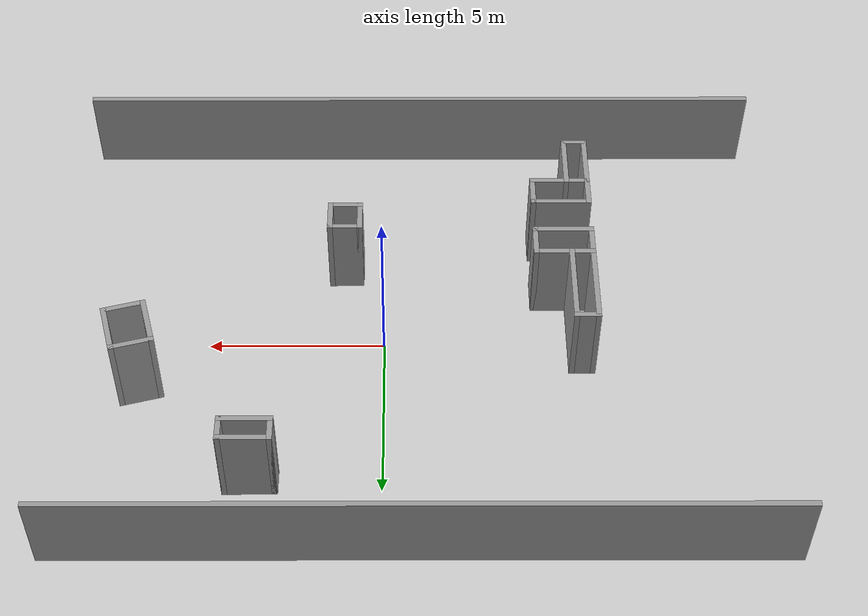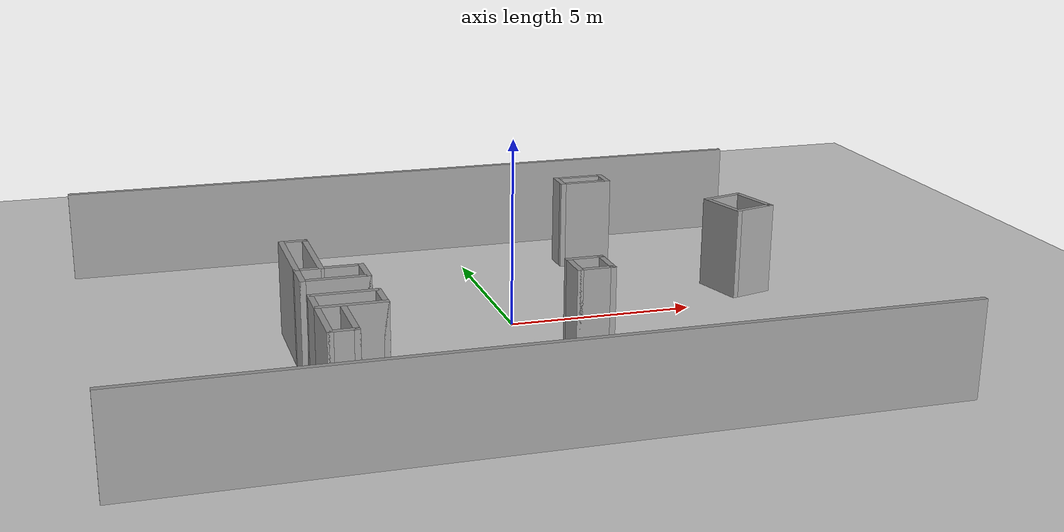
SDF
<sdf version="1.6">
 <world name="default">
  <light name="sun" type="directional">
   <pose>0 0 10 0 -0 0</pose>
   <diffuse>0.8 0.8 0.8 1</diffuse>
   <specular>0.2 0.2 0.2 1</specular>
   <attenuation>
    <range>1000</range>
    <constant>0.9</constant>
    <linear>0.01</linear>
    <quadratic>0.001</quadratic>
   </attenuation>
   <direction>-0.5 0.1 -0.9</direction>
  </light>
  <model name="ground_plane">
   <static>1</static>
   <link name="link">
    <collision name="collision">
     <geometry><plane><normal>0 0 1</normal><size>100 100</size></plane></geometry>
     <surface><friction><ode><mu>100</mu><mu2>50</mu2></ode></friction></surface>
    </collision>
    <visual name="visual">
     <cast_shadows>0</cast_shadows>
     <geometry><plane><normal>0 0 1</normal><size>100 100</size></plane></geometry>
     <material>
      <script><uri>file://media/materials/scripts/gazebo.material</uri><name>Gazebo/Grey</name></script>
     </material>
    </visual>
   </link>
  </model>
  <gravity>0 0 -9.8</gravity>
  <magnetic_field>6e-06 2.3e-05 -4.2e-05</magnetic_field>
  <atmosphere type="adiabatic"/>
  <physics name="default_physics" default="0" type="ode">
   <max_step_size>0.001</max_step_size>
   <real_time_factor>1</real_time_factor>
   <real_time_update_rate>1000</real_time_update_rate>
  </physics>
  <scene><ambient>0.4 0.4 0.4 1</ambient><background>0.7 0.7 0.7 1</background><shadows>1</shadows></scene>
  <audio><device>default</device></audio>
  <spherical_coordinates>
   <surface_model>EARTH_WGS84</surface_model>
   <latitude_deg>0</latitude_deg>
   <longitude_deg>0</longitude_deg>
   <elevation>0</elevation>
   <heading_deg>0</heading_deg>
  </spherical_coordinates>
  <model name="new_world_23.10.25">
   <pose>-1.01664 -0.322448 0 0 -0 0</pose>
   <link name="Wall_10">
    <collision name="Wall_10_Collision">
     <geometry><box><size>1.75 0.15 2.5</size></box></geometry>
     <pose>0 0 1.25 0 -0 0</pose>
    </collision>
    <visual name="Wall_10_Visual">
     <pose>0 0 1.25 0 -0 0</pose>
     <geometry><box><size>1.75 0.15 2.5</size></box></geometry>
     <material>
      <script><uri>file://media/materials/scripts/gazebo.material</uri><name>Gazebo/Grey</name></script>
      <ambient>1 1 1 1</ambient>
     </material>
     <meta><layer>0</layer></meta>
    </visual>
    <pose>-4.08917 -1.96188 0 0 -0 0</pose>
   </link>
   <link name="Wall_11">
    <collision name="Wall_11_Collision">
     <geometry><box><size>1 0.15 2.5</size></box></geometry>
     <pose>0 0 1.25 0 -0 0</pose>
    </collision>
    <visual name="Wall_11_Visual">
     <pose>0 0 1.25 0 -0 0</pose>
     <geometry><box><size>1 0.15 2.5</size></box></geometry>
     <material>
      <script><uri>file://media/materials/scripts/gazebo.material</uri><name>Gazebo/Grey</name></script>
      <ambient>1 1 1 1</ambient>
     </material>
     <meta><layer>0</layer></meta>
    </visual>
    <pose>-3.28917 -1.53688 0 0 -0 1.5708</pose>
   </link>
   <link name="Wall_12">
    <collision name="Wall_12_Collision">
     <geometry><box><size>1.75 0.15 2.5</size></box></geometry>
     <pose>0 0 1.25 0 -0 0</pose>
    </collision>
    <visual name="Wall_12_Visual">
     <pose>0 0 1.25 0 -0 0</pose>
     <geometry><box><size>1.75 0.15 2.5</size></box></geometry>
     <material>
      <script><uri>file://media/materials/scripts/gazebo.material</uri><name>Gazebo/Grey</name></script>
      <ambient>1 1 1 1</ambient>
     </material>
     <meta><layer>0</layer></meta>
    </visual>
    <pose>-4.08917 -1.11188 0 0 -0 3.14159</pose>
   </link>
   <link name="Wall_18">
    <collision name="Wall_18_Collision">
     <geometry><box><size>1 0.15 2.5</size></box></geometry>
     <pose>0 0 1.25 0 -0 0</pose>
    </collision>
    <visual name="Wall_18_Visual">
     <pose>0 0 1.25 0 -0 0</pose>
     <geometry><box><size>1 0.15 2.5</size></box></geometry>
     <material>
      <script><uri>file://media/materials/scripts/gazebo.material</uri><name>Gazebo/Grey</name></script>
      <ambient>1 1 1 1</ambient>
     </material>
     <meta><layer>0</layer></meta>
    </visual>
    <pose>-4.88917 -3.48688 0 0 -0 -1.5708</pose>
   </link>
   <link name="Wall_19">
    <collision name="Wall_19_Collision">
     <geometry><box><size>1.75 0.15 2.5</size></box></geometry>
     <pose>0 0 1.25 0 -0 0</pose>
    </collision>
    <visual name="Wall_19_Visual">
     <pose>0 0 1.25 0 -0 0</pose>
     <geometry><box><size>1.75 0.15 2.5</size></box></geometry>
     <material>
      <script><uri>file://media/materials/scripts/gazebo.material</uri><name>Gazebo/Grey</name></script>
      <ambient>1 1 1 1</ambient>
     </material>
     <meta><layer>0</layer></meta>
    </visual>
    <pose>-4.08917 -3.91188 0 0 -0 0</pose>
   </link>
   <link name="Wall_20">
    <collision name="Wall_20_Collision">
     <geometry><box><size>1 0.15 2.5</size></box></geometry>
     <pose>0 0 1.25 0 -0 0</pose>
    </collision>
    <visual name="Wall_20_Visual">
     <pose>0 0 1.25 0 -0 0</pose>
     <geometry><box><size>1 0.15 2.5</size></box></geometry>
     <material>
      <script><uri>file://media/materials/scripts/gazebo.material</uri><name>Gazebo/Grey</name></script>
      <ambient>1 1 1 1</ambient>
     </material>
     <meta><layer>0</layer></meta>
    </visual>
    <pose>-3.28917 -3.48688 0 0 -0 1.5708</pose>
   </link>
   <link name="Wall_21">
    <collision name="Wall_21_Collision">
     <geometry><box><size>1.75 0.15 2.5</size></box></geometry>
     <pose>0 0 1.25 0 -0 0</pose>
    </collision>
    <visual name="Wall_21_Visual">
     <pose>0 0 1.25 0 -0 0</pose>
     <geometry><box><size>1.75 0.15 2.5</size></box></geometry>
     <material>
      <script><uri>file://media/materials/scripts/gazebo.material</uri><name>Gazebo/Grey</name></script>
      <ambient>1 1 1 1</ambient>
     </material>
     <meta><layer>0</layer></meta>
    </visual>
    <pose>-4.08917 -3.06188 0 0 -0 3.14159</pose>
   </link>
   <link name="Wall_23">
    <collision name="Wall_23_Collision">
     <geometry><box><size>2.5 0.15 2.5</size></box></geometry>
     <pose>0 0 1.25 0 -0 0</pose>
    </collision>
    <visual name="Wall_23_Visual">
     <pose>0 0 1.25 0 -0 0</pose>
     <geometry><box><size>2.5 0.15 2.5</size></box></geometry>
     <material>
      <script><uri>file://media/materials/scripts/gazebo.material</uri><name>Gazebo/Grey</name></script>
      <ambient>1 1 1 1</ambient>
     </material>
     <meta><layer>0</layer></meta>
    </visual>
    <pose>-4.88917 0.063121 0 0 -0 1.5708</pose>
   </link>
   <link name="Wall_24">
    <collision name="Wall_24_Collision">
     <geometry><box><size>0.75 0.15 2.5</size></box></geometry>
     <pose>0 0 1.25 0 -0 0</pose>
    </collision>
    <visual name="Wall_24_Visual">
     <pose>0 0 1.25 0 -0 0</pose>
     <geometry><box><size>0.75 0.15 2.5</size></box></geometry>
     <material>
      <script><uri>file://media/materials/scripts/gazebo.material</uri><name>Gazebo/Grey</name></script>
      <ambient>1 1 1 1</ambient>
     </material>
     <meta><layer>0</layer></meta>
    </visual>
    <pose>-4.58917 1.23812 0 0 -0 0</pose>
   </link>
   <link name="Wall_25">
    <collision name="Wall_25_Collision">
     <geometry><box><size>2.5 0.15 2.5</size></box></geometry>
     <pose>0 0 1.25 0 -0 0</pose>
    </collision>
    <visual name="Wall_25_Visual">
     <pose>0 0 1.25 0 -0 0</pose>
     <geometry><box><size>2.5 0.15 2.5</size></box></geometry>
     <material>
      <script><uri>file://media/materials/scripts/gazebo.material</uri><name>Gazebo/Grey</name></script>
      <ambient>1 1 1 1</ambient>
     </material>
     <meta><layer>0</layer></meta>
    </visual>
    <pose>-4.28917 0.063121 0 0 -0 -1.5708</pose>
   </link>
   <link name="Wall_27">
    <collision name="Wall_27_Collision">
     <geometry><box><size>1.75 0.15 2.5</size></box></geometry>
     <pose>0 0 1.25 0 -0 0</pose>
    </collision>
    <visual name="Wall_27_Visual">
     <pose>0 0 1.25 0 -0 0</pose>
     <geometry><box><size>1.75 0.15 2.5</size></box></geometry>
     <material>
      <script><uri>file://media/materials/scripts/gazebo.material</uri><name>Gazebo/Grey</name></script>
      <ambient>1 1 1 1</ambient>
     </material>
     <meta><layer>0</layer></meta>
    </visual>
    <pose>-4.88917 -4.71188 0 0 -0 -1.5708</pose>
   </link>
   <link name="Wall_28">
    <collision name="Wall_28_Collision">
     <geometry><box><size>0.75 0.15 2.5</size></box></geometry>
     <pose>0 0 1.25 0 -0 0</pose>
    </collision>
    <visual name="Wall_28_Visual">
     <pose>0 0 1.25 0 -0 0</pose>
     <geometry><box><size>0.75 0.15 2.5</size></box></geometry>
     <material>
      <script><uri>file://media/materials/scripts/gazebo.material</uri><name>Gazebo/Grey</name></script>
      <ambient>1 1 1 1</ambient>
     </material>
     <meta><layer>0</layer></meta>
    </visual>
    <pose>-4.58917 -5.51188 0 0 -0 0</pose>
   </link>
   <link name="Wall_29">
    <collision name="Wall_29_Collision">
     <geometry><box><size>1.75 0.15 2.5</size></box></geometry>
     <pose>0 0 1.25 0 -0 0</pose>
    </collision>
    <visual name="Wall_29_Visual">
     <pose>0 0 1.25 0 -0 0</pose>
     <geometry><box><size>1.75 0.15 2.5</size></box></geometry>
     <material>
      <script><uri>file://media/materials/scripts/gazebo.material</uri><name>Gazebo/Grey</name></script>
      <ambient>1 1 1 1</ambient>
     </material>
     <meta><layer>0</layer></meta>
    </visual>
    <pose>-4.28917 -4.71188 0 0 -0 1.5708</pose>
   </link>
   <link name="Wall_31">
    <collision name="Wall_31_Collision">
     <geometry><box><size>1 0.15 2.5</size></box></geometry>
     <pose>0 0 1.25 0 -0 0</pose>
    </collision>
    <visual name="Wall_31_Visual">
     <pose>0 0 1.25 0 -0 0</pose>
     <geometry><box><size>1 0.15 2.5</size></box></geometry>
     <material>
      <script><uri>file://media/materials/scripts/gazebo.material</uri><name>Gazebo/Grey</name></script>
      <ambient>1 1 1 1</ambient>
     </material>
     <meta><layer>0</layer></meta>
    </visual>
    <pose>1.72236 -2.49952 0 0 -0 -1.5708</pose>
   </link>
   <link name="Wall_32">
    <collision name="Wall_32_Collision">
     <geometry><box><size>1 0.15 2.5</size></box></geometry>
     <pose>0 0 1.25 0 -0 0</pose>
    </collision>
    <visual name="Wall_32_Visual">
     <pose>0 0 1.25 0 -0 0</pose>
     <geometry><box><size>1 0.15 2.5</size></box></geometry>
     <material>
      <script><uri>file://media/materials/scripts/gazebo.material</uri><name>Gazebo/Grey</name></script>
      <ambient>1 1 1 1</ambient>
     </material>
     <meta><layer>0</layer></meta>
    </visual>
    <pose>2.14736 -2.92452 0 0 -0 0</pose>
   </link>
   <link name="Wall_33">
    <collision name="Wall_33_Collision">
     <geometry><box><size>1 0.15 2.5</size></box></geometry>
     <pose>0 0 1.25 0 -0 0</pose>
    </collision>
    <visual name="Wall_33_Visual">
     <pose>0 0 1.25 0 -0 0</pose>
     <geometry><box><size>1 0.15 2.5</size></box></geometry>
     <material>
      <script><uri>file://media/materials/scripts/gazebo.material</uri><name>Gazebo/Grey</name></script>
      <ambient>1 1 1 1</ambient>
     </material>
     <meta><layer>0</layer></meta>
    </visual>
    <pose>2.57236 -2.49952 0 0 -0 1.5708</pose>
   </link>
   <link name="Wall_34">
    <collision name="Wall_34_Collision">
     <geometry><box><size>1 0.15 2.5</size></box></geometry>
     <pose>0 0 1.25 0 -0 0</pose>
    </collision>
    <visual name="Wall_34_Visual">
     <pose>0 0 1.25 0 -0 0</pose>
     <geometry><box><size>1 0.15 2.5</size></box></geometry>
     <material>
      <script><uri>file://media/materials/scripts/gazebo.material</uri><name>Gazebo/Grey</name></script>
      <ambient>1 1 1 1</ambient>
     </material>
     <meta><layer>0</layer></meta>
    </visual>
    <pose>2.14736 -2.07452 0 0 -0 3.14159</pose>
   </link>
   <link name="Wall_36">
    <collision name="Wall_36_Collision">
     <geometry><box><size>1.5 0.15 2.5</size></box></geometry>
     <pose>0 0 1.25 0 -0 0</pose>
    </collision>
    <visual name="Wall_36_Visual">
     <pose>0 0 1.25 0 -0 0</pose>
     <geometry><box><size>1.5 0.15 2.5</size></box></geometry>
     <material>
      <script><uri>file://media/materials/scripts/gazebo.material</uri><name>Gazebo/Grey</name></script>
      <ambient>1 1 1 1</ambient>
     </material>
     <meta><layer>0</layer></meta>
    </visual>
    <pose>4.56228 5.36374 0 0 -0 0</pose>
   </link>
   <link name="Wall_37">
    <collision name="Wall_37_Collision">
     <geometry><box><size>0.75 0.15 2.5</size></box></geometry>
     <pose>0 0 1.25 0 -0 0</pose>
    </collision>
    <visual name="Wall_37_Visual">
     <pose>0 0 1.25 0 -0 0</pose>
     <geometry><box><size>0.75 0.15 2.5</size></box></geometry>
     <material>
      <script><uri>file://media/materials/scripts/gazebo.material</uri><name>Gazebo/Grey</name></script>
      <ambient>1 1 1 1</ambient>
     </material>
     <meta><layer>0</layer></meta>
    </visual>
    <pose>5.23728 5.06374 0 0 -0 -1.5708</pose>
   </link>
   <link name="Wall_38">
    <collision name="Wall_38_Collision">
     <geometry><box><size>1.5 0.15 2.5</size></box></geometry>
     <pose>0 0 1.25 0 -0 0</pose>
    </collision>
    <visual name="Wall_38_Visual">
     <pose>0 0 1.25 0 -0 0</pose>
     <geometry><box><size>1.5 0.15 2.5</size></box></geometry>
     <material>
      <script><uri>file://media/materials/scripts/gazebo.material</uri><name>Gazebo/Grey</name></script>
      <ambient>1 1 1 1</ambient>
     </material>
     <meta><layer>0</layer></meta>
    </visual>
    <pose>4.56228 4.76374 0 0 -0 3.14159</pose>
   </link>
   <link name="Wall_39">
    <collision name="Wall_39_Collision">
     <geometry><box><size>0.75 0.15 2.5</size></box></geometry>
     <pose>0 0 1.25 0 -0 0</pose>
    </collision>
    <visual name="Wall_39_Visual">
     <pose>0 0 1.25 0 -0 0</pose>
     <geometry><box><size>0.75 0.15 2.5</size></box></geometry>
     <material>
      <script><uri>file://media/materials/scripts/gazebo.material</uri><name>Gazebo/Grey</name></script>
      <ambient>1 1 1 1</ambient>
     </material>
     <meta><layer>0</layer></meta>
    </visual>
    <pose>3.88728 5.06374 0 0 -0 1.5708</pose>
   </link>
   <link name="Wall_46">
    <collision name="Wall_46_Collision">
     <geometry><box><size>1.5 0.15 2.5</size></box></geometry>
     <pose>0 0 1.25 0 -0 0</pose>
    </collision>
    <visual name="Wall_46_Visual">
     <pose>0 0 1.25 0 -0 0</pose>
     <geometry><box><size>1.5 0.15 2.5</size></box></geometry>
     <material>
      <script><uri>file://media/materials/scripts/gazebo.material</uri><name>Gazebo/Grey</name></script>
      <ambient>1 1 1 1</ambient>
     </material>
     <meta><layer>0</layer></meta>
    </visual>
    <pose>7.43034 1.44013 0 0 -0 -1.309</pose>
   </link>
   <link name="Wall_47">
    <collision name="Wall_47_Collision">
     <geometry><box><size>1.25 0.15 2.5</size></box></geometry>
     <pose>0 0 1.25 0 -0 0</pose>
    </collision>
    <visual name="Wall_47_Visual">
     <pose>0 0 1.25 0 -0 0</pose>
     <geometry><box><size>1.25 0.15 2.5</size></box></geometry>
     <material>
      <script><uri>file://media/materials/scripts/gazebo.material</uri><name>Gazebo/Grey</name></script>
      <ambient>1 1 1 1</ambient>
     </material>
     <meta><layer>0</layer></meta>
    </visual>
    <pose>8.13631 0.930485 0 0 -0 0.261799</pose>
   </link>
   <link name="Wall_48">
    <collision name="Wall_48_Collision">
     <geometry><box><size>1.5 0.15 2.5</size></box></geometry>
     <pose>0 0 1.25 0 -0 0</pose>
    </collision>
    <visual name="Wall_48_Visual">
     <pose>0 0 1.25 0 -0 0</pose>
     <geometry><box><size>1.5 0.15 2.5</size></box></geometry>
     <material>
      <script><uri>file://media/materials/scripts/gazebo.material</uri><name>Gazebo/Grey</name></script>
      <ambient>1 1 1 1</ambient>
     </material>
     <meta><layer>0</layer></meta>
    </visual>
    <pose>8.49286 1.72484 0 0 -0 1.8326</pose>
   </link>
   <link name="Wall_49">
    <collision name="Wall_49_Collision">
     <geometry><box><size>1.25 0.15 2.5</size></box></geometry>
     <pose>0 0 1.25 0 -0 0</pose>
    </collision>
    <visual name="Wall_49_Visual">
     <pose>0 0 1.25 0 -0 0</pose>
     <geometry><box><size>1.25 0.15 2.5</size></box></geometry>
     <material>
      <script><uri>file://media/materials/scripts/gazebo.material</uri><name>Gazebo/Grey</name></script>
      <ambient>1 1 1 1</ambient>
     </material>
     <meta><layer>0</layer></meta>
    </visual>
    <pose>7.7869 2.23448 0 0 -0 -2.87979</pose>
   </link>
   <link name="Wall_5">
    <collision name="Wall_5_Collision">
     <geometry><box><size>20 0.15 2.5</size></box></geometry>
     <pose>0 0 1.25 0 -0 0</pose>
    </collision>
    <visual name="Wall_5_Visual">
     <pose>0 0 1.25 0 -0 0</pose>
     <geometry><box><size>20 0.15 2.5</size></box></geometry>
     <material>
      <script><uri>file://media/materials/scripts/gazebo.material</uri><name>Gazebo/Grey</name></script>
      <ambient>1 1 1 1</ambient>
     </material>
     <meta><layer>0</layer></meta>
    </visual>
    <pose>-0 -7.425 0 0 -0 0</pose>
   </link>
   <link name="Wall_7">
    <collision name="Wall_7_Collision">
     <geometry><box><size>20 0.15 2.5</size></box></geometry>
     <pose>0 0 1.25 0 -0 0</pose>
    </collision>
    <visual name="Wall_7_Visual">
     <pose>0 0 1.25 0 -0 0</pose>
     <geometry><box><size>20 0.15 2.5</size></box></geometry>
     <material>
      <script><uri>file://media/materials/scripts/gazebo.material</uri><name>Gazebo/Grey</name></script>
      <ambient>1 1 1 1</ambient>
     </material>
     <meta><layer>0</layer></meta>
    </visual>
    <pose>-0 7.425 0 0 -0 3.14159</pose>
   </link>
   <link name="Wall_9">
    <collision name="Wall_9_Collision">
     <geometry><box><size>1 0.15 2.5</size></box></geometry>
     <pose>0 0 1.25 0 -0 0</pose>
    </collision>
    <visual name="Wall_9_Visual">
     <pose>0 0 1.25 0 -0 0</pose>
     <geometry><box><size>1 0.15 2.5</size></box></geometry>
     <material>
      <script><uri>file://media/materials/scripts/gazebo.material</uri><name>Gazebo/Grey</name></script>
      <ambient>1 1 1 1</ambient>
     </material>
     <meta><layer>0</layer></meta>
    </visual>
    <pose>-4.88917 -1.53688 0 0 -0 -1.5708</pose>
   </link>
   <static>1</static>
  </model>
 </world>
</sdf>
